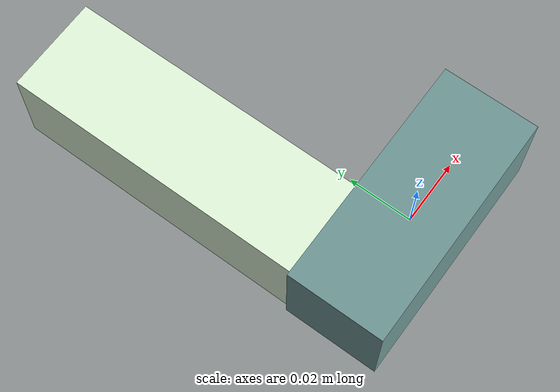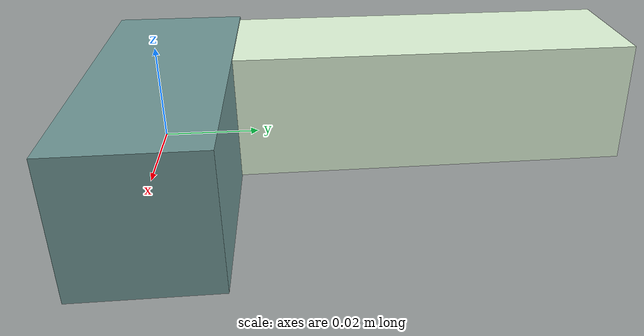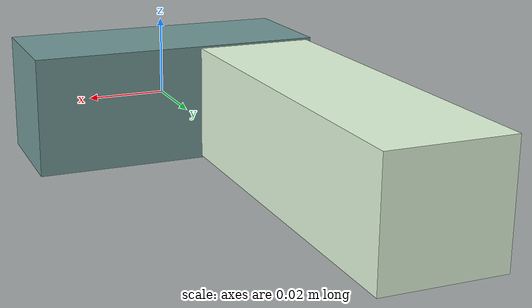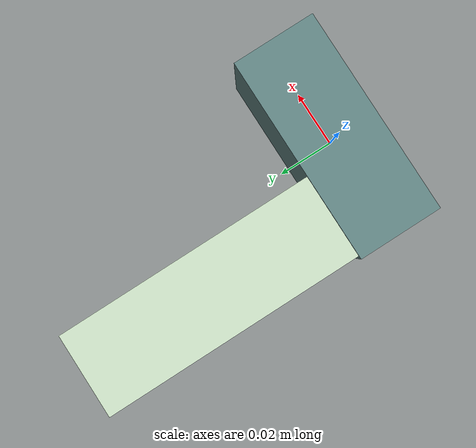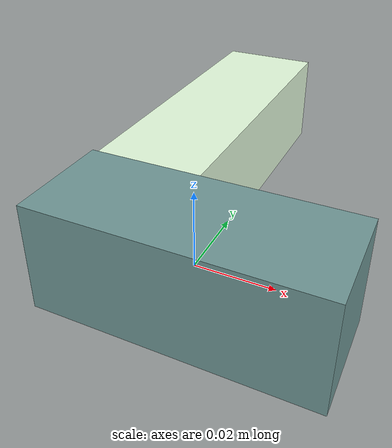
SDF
<sdf version="1.4"><world name="default"><model name="object0"><link name="link1"><pose>0 0 0 0 0 0</pose><inertial><pose>0 0 0 0 0 0</pose><mass>0.040173851789365486</mass><inertia><ixx>6.026077768404823e-06</ixx><ixy>0</ixy><iyy>2.1542451543349645e-05</iyy><ixz>0</ixz><iyz>0</iyz><izz>2.1542451543349645e-05</izz></inertia></inertial><visual name="link1_visual"><pose>0 0  0 0 0 0</pose><geometry><box><size>0.07439602183215832 0.03 0.03</size></box></geometry><material><diffuse>0.4441571750839442 0.6026514330808537 0.5955370928144141 1</diffuse></material></visual><collision><pose>0 0  0 0 0 0</pose><geometry><box><size>0.07439602183215832 0.03 0.03</size></box></geometry></collision></link><link name="link2"><pose>-0.0209808021411886 0.05702923309590356 0 0 0 0</pose><inertial><pose>0 0 0 0 0 0</pose><mass>0.05508523348787143</mass><inertia><ixx>5.1628530375657666e-05</ixx><ixy>0</ixy><iyy>7.991949291865346e-06</iyy><ixz>0</ixz><iyz>0</iyz><izz>5.189936610697304e-05</izz></inertia></inertial><visual name="link2_visual"><pose>0 0  0 0 0 0</pose><geometry><box><size>0.03 0.10200969164420637 0.028999999999999998</size></box></geometry><material><diffuse>0.9039796829414792 0.9967302028502689 0.8772594882286797 1</diffuse></material></visual><collision><pose>0 0  0 0 0 0</pose><geometry><box><size>0.03 0.10200969164420637 0.028999999999999998</size></box></geometry></collision></link><joint name="link_joint_0" type="fixed"><parent>link1</parent><child>link2</child><pose>0 0 0 0 0 0</pose><axis><xyz>0 0 1</xyz></axis></joint></model></world></sdf>
